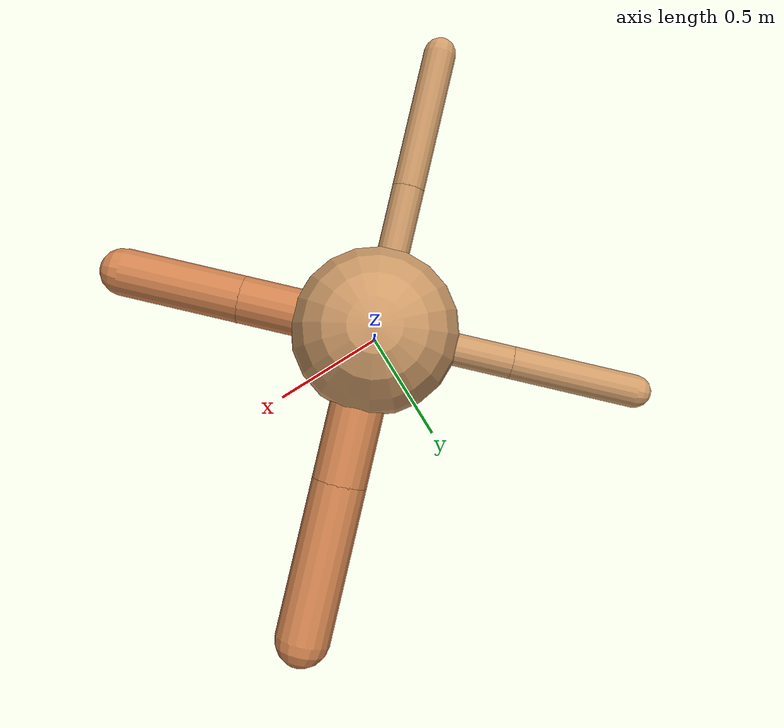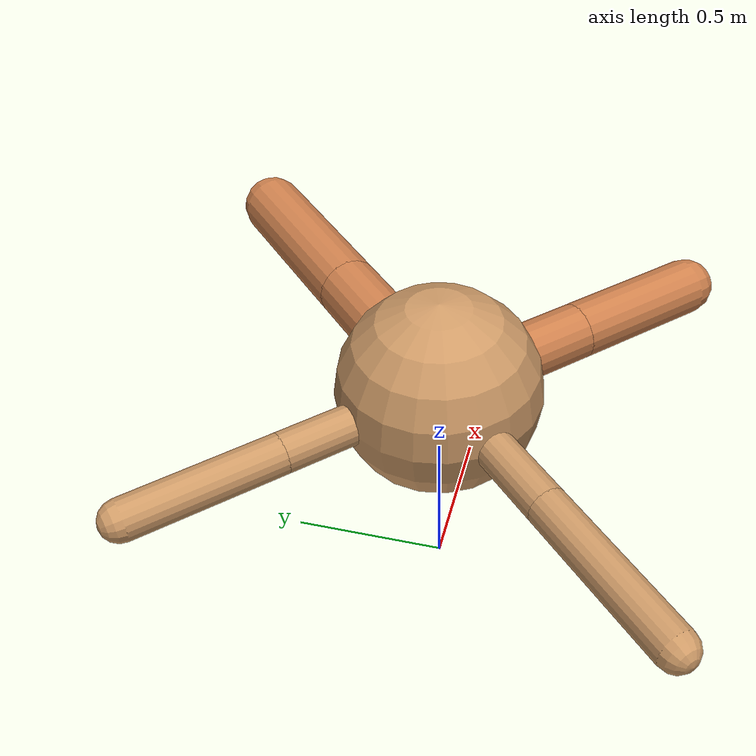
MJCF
<?xml version="1.0" ?>
<mujoco model="ant">

	<compiler angle="degree" coordinate="local" inertiafromgeom="true"/>

	<option integrator="RK4" timestep="0.01"/>

	<custom>

		<numeric data="0.0 0.0 0.55 1.0 0.0 0.0 0.0 0.0 1.0 0.0 -1.0 0.0 -1.0 0.0 1.0" name="init_qpos"/>

	</custom>

	<default>

		<joint armature="1" damping="1" limited="true"/>

		<geom conaffinity="0" condim="3" density="5.0" friction="1.5 0.1 0.1" margin="0.01" rgba="0.8 0.6 0.4 1"/>

	</default>

	<worldbody>

		<body name="torso" pos="0 0 0.75">

			<geom name="torso_geom" pos="0 0 0" size="0.312793273239916" type="sphere"/>

			<!--joint armature="0" damping="0" limited="false" margin="0.01" name="root" pos="0 0 0" type="free"/-->

			<body name="front_left_leg" pos="0 0 0">

				<geom fromto="0 0 0 0.2 0.2 0" name="aux_1_geom" size="0.10342208635271019" type="capsule" rgba=".8 .5 .3 1"/>

				<body name="aux_1" pos="0.2 0.2 0">

					<joint axis="0 0 1" name="hip_1" pos="0.0 0.0 0.0" range="-40 40" type="hinge"/>

					<geom fromto="0 0 0 0.20545135110598484 0.20545135110598484 0" name="left_leg_geom" size="0.10342208635271019" type="capsule" rgba=".8 .5 .3 1"/>

					<body pos="0.20545135110598484 0.20545135110598484 0" name="front_left_foot">

						<joint axis="-1 1 0" name="ankle_1" pos="0.0 0.0 0.0" range="30 100" type="hinge"/>

						<geom fromto="0 0 0 0.4109027022119697 0.4109027022119697 0" name="left_ankle_geom" size="0.10342208635271019" type="capsule" rgba=".8 .5 .3 1"/>

					</body>

				</body>

			</body>

			<body name="front_right_leg" pos="0 0 0">

				<geom fromto="0 0 0 -0.2 0.2 0" name="aux_2_geom" size="0.0612532196928558" type="capsule"/>

				<body name="aux_2" pos="-0.2 0.2 0">

					<joint axis="0 0 1" name="hip_2" pos="0.0 0.0 0.0" range="-40 40" type="hinge"/>

					<geom fromto="0 0 0 -0.16373960283717906 0.16373960283717906 0" name="right_leg_geom" size="0.0612532196928558" type="capsule"/>

					<body pos="-0.16373960283717906 0.16373960283717906 0" name="front_right_foot">

						<joint axis="1 1 0" name="ankle_2" pos="0.0 0.0 0.0" range="-100 -30" type="hinge"/>

						<geom fromto="0 0 0 -0.3274792056743581 0.3274792056743581 0" name="right_ankle_geom" size="0.0612532196928558" type="capsule"/>

					</body>

				</body>

			</body>

			<body name="left_back_leg" pos="0 0 0">

				<geom fromto="0 0 0 -0.2 -0.2 0" name="aux_3_geom" size="0.0608251204691616" type="capsule"/>

				<body name="aux_3" pos="-0.2 -0.2 0">

					<joint axis="0 0 1" name="hip_3" pos="0.0 0.0 0.0" range="-40 40" type="hinge"/>

					<geom fromto="0 0 0 -0.1833458733544031 -0.1833458733544031 0" name="back_leg_geom" size="0.0608251204691616" type="capsule"/>

					<body pos="-0.1833458733544031 -0.1833458733544031 0" name="left_back_foot">

						<joint axis="-1 1 0" name="ankle_3" pos="0.0 0.0 0.0" range="-100 -30" type="hinge"/>

						<geom fromto="0 0 0 -0.3666917467088062 -0.3666917467088062 0" name="third_ankle_geom" size="0.0608251204691616" type="capsule"/>

					</body>

				</body>

			</body>

			<body name="right_back_leg" pos="0 0 0">

				<geom fromto="0 0 0 0.2 -0.2 0" name="aux_4_geom" size="0.08934023365675996" type="capsule" rgba=".8 .5 .3 1"/>

				<body name="aux_4" pos="0.2 -0.2 0">

					<joint axis="0 0 1" name="hip_4" pos="0.0 0.0 0.0" range="-40 40" type="hinge"/>

					<geom fromto="0 0 0 0.15742080394437086 -0.15742080394437086 0" name="rightback_leg_geom" size="0.08934023365675996" type="capsule" rgba=".8 .5 .3 1"/>

					<body pos="0.15742080394437086 -0.15742080394437086 0" name="right_back_foot">

						<joint axis="1 1 0" name="ankle_4" pos="0.0 0.0 0.0" range="30 100" type="hinge"/>

						<geom fromto="0 0 0 0.3148416078887417 -0.3148416078887417 0" name="fourth_ankle_geom" size="0.08934023365675996" type="capsule" rgba=".8 .5 .3 1"/>

					</body>

				</body>

			</body>

		</body>

	</worldbody>

	<actuator>

		<motor ctrllimited="true" ctrlrange="-1.0 1.0" joint="hip_4" gear="150"/>

		<motor ctrllimited="true" ctrlrange="-1.0 1.0" joint="ankle_4" gear="150"/>

		<motor ctrllimited="true" ctrlrange="-1.0 1.0" joint="hip_1" gear="150"/>

		<motor ctrllimited="true" ctrlrange="-1.0 1.0" joint="ankle_1" gear="150"/>

		<motor ctrllimited="true" ctrlrange="-1.0 1.0" joint="hip_2" gear="150"/>

		<motor ctrllimited="true" ctrlrange="-1.0 1.0" joint="ankle_2" gear="150"/>

		<motor ctrllimited="true" ctrlrange="-1.0 1.0" joint="hip_3" gear="150"/>

		<motor ctrllimited="true" ctrlrange="-1.0 1.0" joint="ankle_3" gear="150"/>

	</actuator>

</mujoco>
